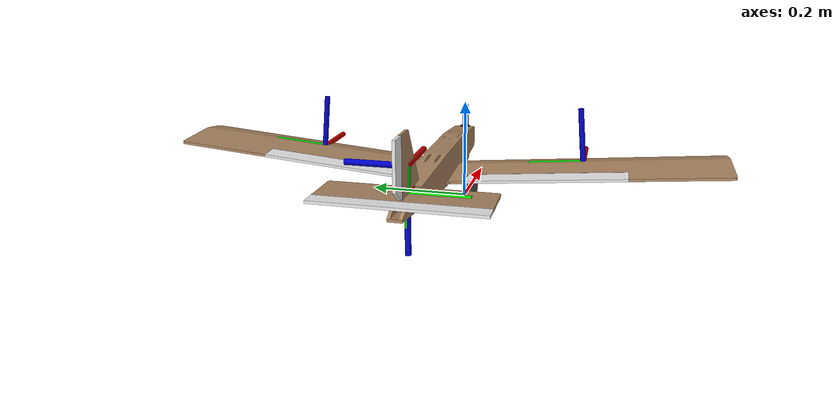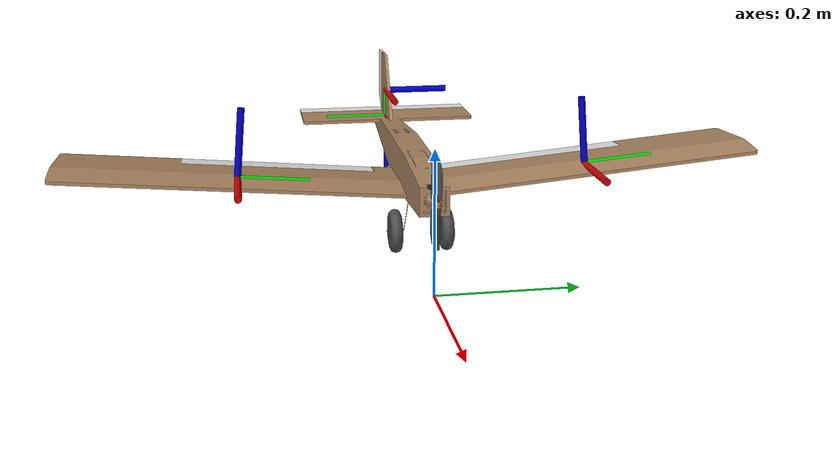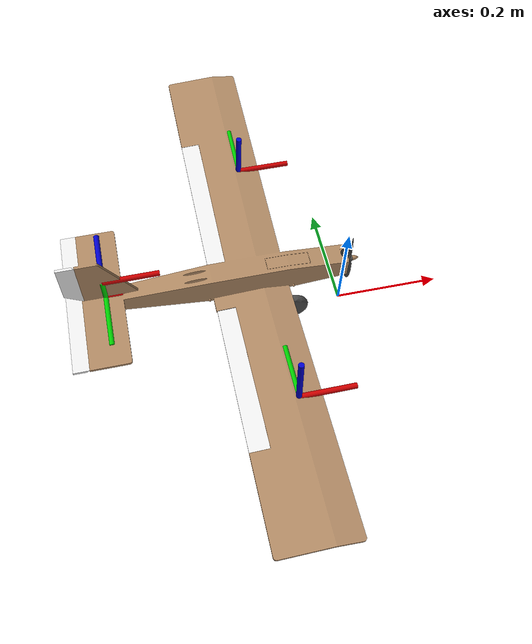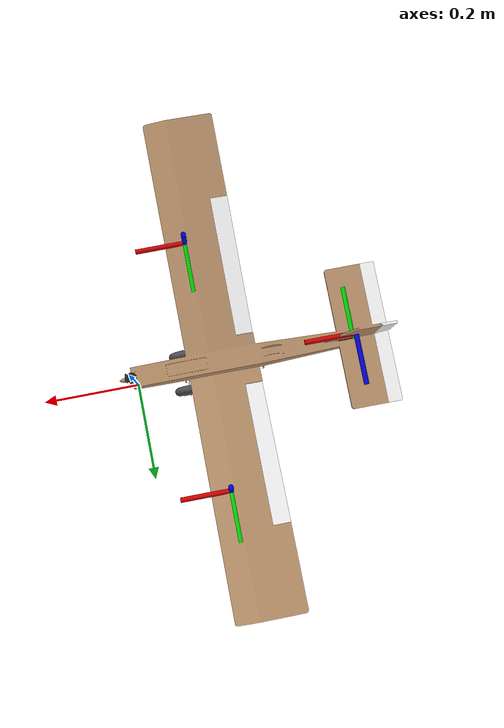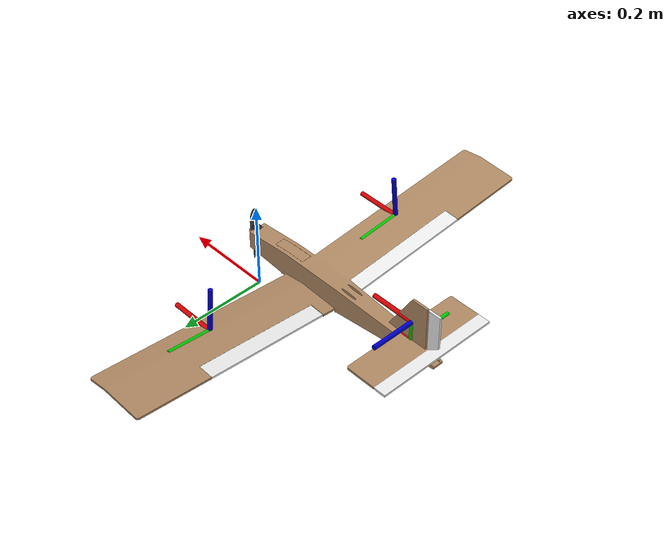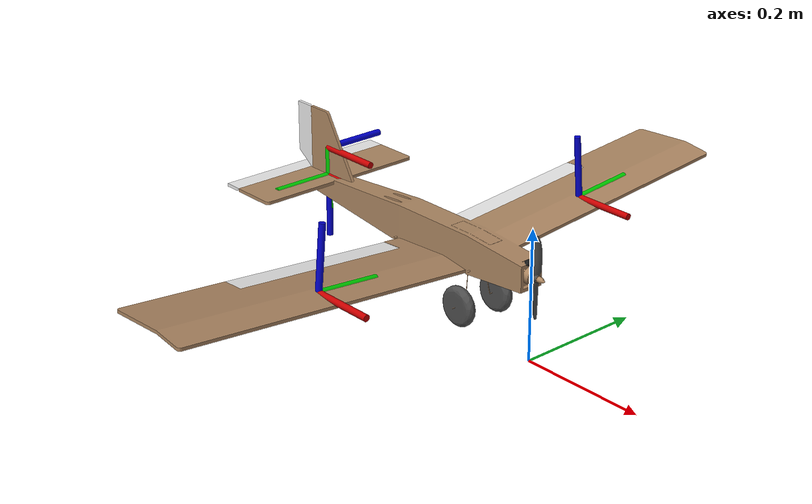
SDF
<?xml version='1.0'?>
<sdf version='1.6'>
  <model name="mini_fixedwing_10">
    <pose>0 0 0.15 0 0 0</pose>
    <link name='fuselage'>
      <inertial>
        <pose>-0.144 0 -0.02 0 0 0</pose>
        <mass>0.194</mass>
        <inertia>
          <ixx>3e-3</ixx>
          <iyy>2e-3</iyy>
          <izz>5e-3</izz>
        </inertia>
      </inertial>
      <collision name='collision'>
        <geometry>
          <mesh>
            <uri>model://mini_fixedwing_10/meshes/stl/fuselage.stl</uri>
          </mesh>
        </geometry>
        <surface>
          <friction>
            <ode>
              <mu>0.2</mu>
              <mu2>0.2</mu2>
            </ode>
          </friction>
          <contact>
            <ode>
              <max_vel>0.1</max_vel>
              <min_depth>0.001</min_depth>
            </ode>
          </contact>
        </surface>
      </collision>
      <visual name='visual'>
        <geometry>
          <mesh>
            <uri>model://mini_fixedwing_10/meshes/stl/fuselage.stl</uri>
          </mesh>
        </geometry>
        <material>
          <ambient>0.678 0.529 0.384 1</ambient>
          <diffuse>0.678 0.529 0.384 1</diffuse>
          <specular>0.678 0.529 0.384 1</specular>
        </material>
      </visual>

      <visual name='cp_vtail'>
        <pose>-0.44 0 0.04 -1.57 0 0</pose>
        <geometry>
          <mesh>
            <scale>0.1 0.1 0.1</scale>
            <uri>model://mini_fixedwing_11/meshes/axes.dae</uri> </mesh>
        </geometry>
      </visual>
      <visual name='cp_htail'>
        <pose>-0.44 0 -0.005 3.14 0 0</pose>
        <geometry>
          <mesh>
            <scale>0.1 0.1 0.1</scale>
            <uri>model://mini_fixedwing_11/meshes/axes.dae</uri> </mesh>
        </geometry>
      </visual>
      <visual name='cp_wing_left'>
        <pose>-0.15 0.25 -0.02 0.087 0 0</pose>
        <geometry>
          <mesh>
            <scale>0.1 0.1 0.1</scale>
            <uri>model://mini_fixedwing_11/meshes/axes.dae</uri> </mesh>
        </geometry>
      </visual>
      <visual name='cp_wing_right'>
        <pose>-0.15 -0.25 -0.02 -0.087 0 0</pose>
        <geometry>
          <mesh>
            <scale>0.1 0.1 0.1</scale>
            <uri>model://mini_fixedwing_11/meshes/axes.dae</uri> </mesh>
        </geometry>
      </visual>

    </link>

    <link name='wheel_left'>
      <inertial>
        <mass>0.004</mass>
        <pose>-0.105 0.035 -0.09</pose>
        <inertia>
          <ixx>2.27e-5</ixx>
          <iyy>1.16e-5</iyy>
          <izz>1.16e-5</izz>
        </inertia>
      </inertial>
      <visual name='visual'>
        <cast_shadows>0</cast_shadows>
        <geometry>
          <mesh>
            <uri>model://mini_fixedwing_10/meshes/stl/wheel_left.stl</uri>
          </mesh>
        </geometry>
        <material>
          <script>
            <name>Gazebo/DarkGrey</name>
          </script>
        </material>
      </visual>
      <collision name='collision'>
        <pose>-0.105 0.035 -0.09 1.57 0 0</pose>
        <geometry>
          <cylinder>
            <radius>0.0348</radius>
            <length>0.0162</length>
          </cylinder>
        </geometry>
        <surface>
          <friction>
            <ode>
              <mu>0.3</mu>
              <mu2>0.3</mu2>
            </ode>
          </friction>
          <contact>
            <ode>
              <max_vel>0.1</max_vel>
              <min_depth>0.001</min_depth>
            </ode>
          </contact>
        </surface>
      </collision>

    </link>

    <joint name='wheel_left_joint' type='revolute'>
      <pose>-0.105 0.035 -0.09 0 0 0</pose>
      <parent>fuselage</parent>
      <child>wheel_left</child>
      <axis>
        <xyz>0 1 0</xyz>
        <dynamics>
          <damping>0.1</damping>
        </dynamics>
      </axis>
      <physics>
        <ode>
          <implicit_spring_damper>1</implicit_spring_damper>
        </ode>
      </physics>
    </joint>

    <link name='wheel_right'>
      <inertial>
        <mass>0.004</mass>
        <pose>-0.105 -0.035 -0.09 0 0 0</pose>
        <inertia>
          <ixx>2.27e-5</ixx>
          <iyy>1.16e-5</iyy>
          <izz>1.16e-5</izz>
        </inertia>
      </inertial>
      <visual name='visual'>
        <cast_shadows>0</cast_shadows>
        <geometry>
          <mesh>
            <uri>model://mini_fixedwing_10/meshes/stl/wheel_right.stl</uri>
          </mesh>
        </geometry>
        <material>
          <script>
            <name>Gazebo/DarkGrey</name>
          </script>
        </material>
      </visual>
      <collision name='collision'>
        <pose>-0.105 -0.035 -0.09 1.57 0 0</pose>
        <geometry>
          <cylinder>
            <radius>0.0348</radius>
            <length>0.0162</length>
          </cylinder>
        </geometry>
        <surface>
          <friction>
            <ode>
              <mu>0.3</mu>
              <mu2>0.3</mu2>
            </ode>
          </friction>
          <contact>
            <ode>
              <max_vel>0.1</max_vel>
              <min_depth>0.001</min_depth>
            </ode>
          </contact>
        </surface>
      </collision>

    </link>

    <joint name='wheel_right_joint' type='revolute'>
      <pose>-0.105 -0.035 -0.09 0 0 0</pose>
      <parent>fuselage</parent>
      <child>wheel_right</child>
      <axis>
        <xyz>0 1 0</xyz>
        <dynamics>
          <damping>0.1</damping>
        </dynamics>
      </axis>
      <physics>
        <ode>
          <implicit_spring_damper>1</implicit_spring_damper>
        </ode>
      </physics>
    </joint>

    <link name='rudder'>
      <inertial>
        <mass>0.001</mass>
        <pose>-0.495 0 0.05</pose>
        <inertia>
          <ixx>2e-6</ixx>
          <iyy>3.82e-5</iyy>
          <izz>4.02e-5</izz>
        </inertia>
      </inertial>
      <visual name='visual'>
        <cast_shadows>0</cast_shadows>
        <geometry>
          <mesh>
            <uri>model://mini_fixedwing_10/meshes/stl/rudder.stl</uri>
          </mesh>
        </geometry>
        <material>
          <script>
            <name>Gazebo/White</name>
          </script>
        </material>
      </visual>
    </link>

    <joint name='rudder_joint' type='revolute'>
      <pose>-0.48 0 0.05</pose>
      <parent>fuselage</parent>
      <child>rudder</child>
      <axis>
        <xyz>0 0 1</xyz>
        <dynamics>
          <damping>0.1</damping>
        </dynamics>
        <limit>
          <lower>-0.5</lower>
          <upper>0.5</upper>
        </limit>
      </axis>
      <physics>
        <ode>
          <implicit_spring_damper>1</implicit_spring_damper>
        </ode>
      </physics>
    </joint>

    <link name='elevator'>
      <inertial>
        <mass>0.002</mass>
        <pose>-0.5 0 -0.005</pose>
        <inertia>
          <ixx>1.33e-5</ixx>
          <iyy>1.03e-3</iyy>
          <izz>1.05e-3</izz>
        </inertia>
      </inertial>
      <visual name='visual'>
        <cast_shadows>0</cast_shadows>
        <geometry>
          <mesh>
            <uri>model://mini_fixedwing_10/meshes/stl/elevator.stl</uri>
          </mesh>
        </geometry>
        <material>
          <script>
            <name>Gazebo/White</name>
          </script>
        </material>
      </visual>
    </link>

    <joint name='elevator_joint' type='revolute'>
      <pose>-0.48 0 -0.005</pose>
      <parent>fuselage</parent>
      <child>elevator</child>
      <axis>
        <xyz>0 1 0</xyz>
        <dynamics>
          <damping>0.1</damping>
        </dynamics>
        <limit>
          <lower>-0.5</lower>
          <upper>0.5</upper>
        </limit>
      </axis>
      <physics>
        <ode>
          <implicit_spring_damper>1</implicit_spring_damper>
        </ode>
      </physics>
    </joint>

    <link name='aileron_left'>
      <inertial>
        <mass>0.003</mass>
        <pose>-0.24 0.189 -0.03 0.087 0 0</pose>
        <inertia>
          <ixx>3.9e-6</ixx>
          <iyy>3.6e-6</iyy>
          <izz>1.07e-4</izz>
        </inertia>
      </inertial>
      <visual name='visual'>
        <cast_shadows>0</cast_shadows>
        <geometry>
          <mesh>
            <uri>model://mini_fixedwing_10/meshes/stl/aileron_left.stl</uri>
          </mesh>
        </geometry>
        <material>
          <script>
            <name>Gazebo/White</name>
          </script>
        </material>
      </visual>
    </link>

    <joint name='aileron_left_joint' type='revolute'>
      <pose>-0.216 0.189 -0.025 0.087 0 0</pose>
      <parent>fuselage</parent>
      <child>aileron_left</child>
      <axis>
        <xyz>0 -1 0</xyz>
        <dynamics>
          <damping>0.1</damping>
        </dynamics>
        <limit>
          <lower>-0.5</lower>
          <upper>0.5</upper>
        </limit>
      </axis>
      <physics>
        <ode>
          <implicit_spring_damper>1</implicit_spring_damper>
        </ode>
      </physics>
    </joint>

    <link name='aileron_right'>
      <inertial>
        <mass>0.003</mass>
        <pose>-0.24 -0.189 -0.03 -0.087 0 0</pose>
        <inertia>
          <ixx>3.9e-6</ixx>
          <iyy>3.6e-6</iyy>
          <izz>1.07e-4</izz>
        </inertia>
      </inertial>
      <visual name='visual'>
        <cast_shadows>0</cast_shadows>
        <geometry>
          <mesh>
            <uri>model://mini_fixedwing_10/meshes/stl/aileron_right.stl</uri>
          </mesh>
        </geometry>
        <material>
          <script>
            <name>Gazebo/White</name>
          </script>
        </material>
      </visual>
    </link>

    <joint name='aileron_right_joint' type='revolute'>
      <pose>-0.216 -0.189 -0.025 -0.087 0 0</pose>
      <parent>fuselage</parent>
      <child>aileron_right</child>
      <axis>
        <xyz>0 -1 0</xyz>
        <dynamics>
          <damping>0.1</damping>
        </dynamics>
        <limit>
          <lower>-0.5</lower>
          <upper>0.5</upper>
        </limit>
      </axis>
      <physics>
        <ode>
          <implicit_spring_damper>1</implicit_spring_damper>
        </ode>
      </physics>
    </joint>

    <link name='propeller'>
      <inertial>
        <mass>0.001</mass>
        <pose>0 0 -0.02</pose>
        <inertia>
          <ixx>1e-6</ixx>
          <iyy>1e-6</iyy>
          <izz>1e-6</izz>
        </inertia>
      </inertial>
      <visual name='visual'>
        <cast_shadows>0</cast_shadows>
        <geometry>
          <mesh>
            <uri>model://mini_fixedwing_10/meshes/stl/propeller.stl</uri>
          </mesh>
        </geometry>
        <material>
          <script>
            <name>Gazebo/DarkGrey</name>
          </script>
        </material>
      </visual>
    </link>

    <joint name='propeller_joint' type='revolute'>
      <pose>0 0 -0.02</pose>
      <parent>fuselage</parent>
      <child>propeller</child>
      <axis>
        <xyz>1 0 0</xyz>
      </axis>
    </joint>

    <include>
      <uri>model://gps</uri>
      <pose>0 0 0 0 0 0</pose>
      <name>gps</name>
    </include>
    <joint name='gps_joint' type='fixed'>
      <child>gps::link</child>
      <parent>fuselage</parent>
    </joint>

    <plugin name="vtail" filename="libLiftDragPlugin2.so">
      <pose>-0.44 0 0.04 -1.57 0 0</pose>
      <cL0>0</cL0>
      <cLa>5.61</cLa>
      <cm0>0</cm0>
      <cma>0</cma>
      <cD0>0.03</cD0>
      <kcDcL>0.1</kcDcL>
      <alpha_stall>0.34</alpha_stall>
      <cLa_stall>-12.1</cLa_stall>
      <cma_stall>-0.434</cma_stall>
      <area>0.05</area>
      <air_density>1.2041</air_density>
      <link_name>fuselage</link_name>
      <control_joint_name>rudder_joint</control_joint_name>
      <control_joint_rad_to_cL>1.0</control_joint_rad_to_cL>
      <control_joint_rad_to_cm>-0.25</control_joint_rad_to_cm>
    </plugin>

    <plugin name="htail" filename="libLiftDragPlugin2.so">
      <pose>-0.44 0 -0.005 3.14 0 0</pose>
      <cL0>0</cL0>
      <cLa>5.61</cLa>
      <cm0>0</cm0>
      <cma>0</cma>
      <cD0>0.34</cD0>
      <kcDcL>0.1</kcDcL>
      <alpha_stall>0.3</alpha_stall>
      <cLa_stall>-12.1</cLa_stall>
      <cma_stall>-0.434</cma_stall>
      <area>0.05</area>
      <air_density>1.2041</air_density>
      <link_name>fuselage</link_name>
      <control_joint_name>elevator_joint</control_joint_name>
      <control_joint_rad_to_cL>1.0</control_joint_rad_to_cL>
      <control_joint_rad_to_cm>-0.25</control_joint_rad_to_cm>
    </plugin>

    <plugin name="wing_left" filename="libLiftDragPlugin2.so">
      <pose>-0.15 0.25 -0.02 0.087 0 0</pose>
      <cL0>0.25</cL0>
      <cLa>5.289</cLa>
      <!--check cm0-->
      <cm0>0.01</cm0>
      <cma>-0.286</cma>
      <cD0>0.03</cD0>
      <kcDcL>0.1</kcDcL>
      <alpha_stall>0.18</alpha_stall>
      <cLa_stall>-5.95</cLa_stall>
      <cma_stall>-0.67</cma_stall>
      <area>0.0707</area>
      <air_density>1.2041</air_density>
      <link_name>fuselage</link_name>
      <control_joint_name>aileron_left_joint</control_joint_name>
      <control_joint_rad_to_cL>1.0</control_joint_rad_to_cL>
      <control_joint_rad_to_cm>-0.25</control_joint_rad_to_cm>
      <verbose>0</verbose>
    </plugin>

    <plugin name="wing_right" filename="libLiftDragPlugin2.so">
      <pose>-0.15 -0.25 -0.02 -0.087 0 0</pose>
      <cL0>0.25</cL0>
      <cLa>5.289</cLa>
      <!--check cm0-->
      <cm0>0.01</cm0>
      <cma>-0.286</cma>
      <cD0>0.03</cD0>
      <kcDcL>0.1</kcDcL>
      <alpha_stall>0.18</alpha_stall>
      <cLa_stall>-5.95</cLa_stall>
      <cma_stall>-0.67</cma_stall>
      <area>0.0707</area>
      <air_density>1.2041</air_density>
      <link_name>fuselage</link_name>
      <control_joint_name>aileron_right_joint</control_joint_name>
      <control_joint_rad_to_cL>1.0</control_joint_rad_to_cL>
      <control_joint_rad_to_cm>-0.25</control_joint_rad_to_cm>
      <verbose>0</verbose>
    </plugin>

    <!--Start PX4 autopilot-->

    <link name='imu_link'>
      <pose>-0.144 0 -0.02 0 0 0</pose>
      <inertial>
        <mass>0.001</mass>
        <inertia>
          <ixx>1e-05</ixx>
          <iyy>1e-05</iyy>
          <izz>1e-05</izz>
        </inertia>
      </inertial>
    </link>

    <joint name='imu_joint' type='revolute'>
      <child>imu_link</child>
      <parent>fuselage</parent>
      <axis>
        <xyz>1 0 0</xyz>
        <limit>
          <lower>0</lower>
          <upper>0</upper>
          <effort>0</effort>
          <velocity>0</velocity>
        </limit>
        <dynamics>
          <spring_reference>0</spring_reference>
          <spring_stiffness>0</spring_stiffness>
        </dynamics>
        <use_parent_model_frame>1</use_parent_model_frame>
      </axis>
    </joint>

    <link name='airspeed_link'>
      <pose>0 0 0 0 0 0</pose>
      <inertial>
        <pose>0 0 0 0 0 0</pose>
        <mass>0.015</mass>
        <inertia>
          <ixx>1e-05</ixx>
          <ixy>0</ixy>
          <ixz>0</ixz>
          <iyy>1e-05</iyy>
          <iyz>0</iyz>
          <izz>1e-05</izz>
        </inertia>
      </inertial>
    </link>
    <joint name='airspeed_joint' type='revolute'>
      <child>airspeed_link</child>
      <parent>fuselage</parent>
      <axis>
        <xyz>1 0 0</xyz>
        <limit>
          <lower>0</lower>
          <upper>0</upper>
          <effort>0</effort>
          <velocity>0</velocity>
        </limit>
        <dynamics>
          <spring_reference>0</spring_reference>
          <spring_stiffness>0</spring_stiffness>
        </dynamics>
        <use_parent_model_frame>1</use_parent_model_frame>
      </axis>
    </joint>

    <plugin name='gazebo_imu_plugin' filename='libgazebo_imu_plugin.so'>
      <robotNamespace></robotNamespace>
      <linkName>imu_link</linkName>
      <imuTopic>/imu</imuTopic>
      <gyroscopeNoiseDensity>0.0003394</gyroscopeNoiseDensity>
      <gyroscopeRandomWalk>3.8785e-05</gyroscopeRandomWalk>
      <gyroscopeBiasCorrelationTime>1000.0</gyroscopeBiasCorrelationTime>
      <gyroscopeTurnOnBiasSigma>0.0087</gyroscopeTurnOnBiasSigma>
      <accelerometerNoiseDensity>0.004</accelerometerNoiseDensity>
      <accelerometerRandomWalk>0.006</accelerometerRandomWalk>
      <accelerometerBiasCorrelationTime>300.0</accelerometerBiasCorrelationTime>
      <accelerometerTurnOnBiasSigma>0.196</accelerometerTurnOnBiasSigma>
    </plugin>

    <plugin name='groundtruth_plugin' filename='libgazebo_groundtruth_plugin.so'>
      <robotNamespace/>
    </plugin>

    <plugin name='magnetometer_plugin' filename='libgazebo_magnetometer_plugin.so'>
      <robotNamespace/>
      <pubRate>100</pubRate>
      <noiseDensity>0.0004</noiseDensity>
      <randomWalk>6.4e-06</randomWalk>
      <biasCorrelationTime>600</biasCorrelationTime>
      <magTopic>/mag</magTopic>
    </plugin>

    <plugin name='barometer_plugin' filename='libgazebo_barometer_plugin.so'>
      <robotNamespace/>
      <pubRate>50</pubRate>
      <baroTopic>/baro</baroTopic>
    </plugin>

    <plugin name='airspeed_plugin' filename='libgazebo_airspeed_plugin.so'>
      <robotNamespace/>
      <linkName>airspeed_link</linkName>
    </plugin>

    <plugin name='motor_plugin' filename='libMotorPlugin.so'>
      <gztopic>/throttle1</gztopic>
      <joint_name>propeller_joint</joint_name>
      <prop_name>propeller</prop_name>
      <diameter>5</diameter>
      <ct>0.1025  -0.0258 0.2714  -0.6997 0.359</ct>
      <cp>0.0537  0.0096  0.2053  -0.4276 0.1702</cp>
      <kV>2280</kV>
      <i0>0.5</i0>
      <iMax>30</iMax>
      <r0>0.2</r0>
      <battV>11.1</battV>
      <capacity>850</capacity>
      <axis_num>0</axis_num>
      <!--Seems to lacking thrust, being optimisticabout motor eff.-->
      <motor_eff>0.9</motor_eff>
      <verbose>1</verbose>
    </plugin>

    <plugin name='mavlink_interface' filename='libgazebo_mavlink_interface.so'>
      <robotNamespace></robotNamespace>
      <imuSubTopic>/imu</imuSubTopic>

      <magSubTopic>/mag</magSubTopic>
      <baroSubTopic>/baro</baroSubTopic>
      <mavlink_addr>INADDR_ANY</mavlink_addr>
      <mavlink_udp_port>14560</mavlink_udp_port>
      <serialEnabled>false</serialEnabled>
      <serialDevice>/dev/ttyACM0</serialDevice>
      <baudRate>921600</baudRate>
      <qgc_addr>INADDR_ANY</qgc_addr>
      <qgc_udp_port>14550</qgc_udp_port>
      <sdk_addr>INADDR_ANY</sdk_addr>
      <sdk_udp_port>14540</sdk_udp_port>
      <hil_mode>false</hil_mode>
      <hil_state_level>false</hil_state_level>
      <enable_lockstep>true</enable_lockstep>
      <use_tcp>true</use_tcp>
      <motorSpeedCommandPubTopic>/gazebo/command/motor_speed</motorSpeedCommandPubTopic>
      <control_channels>
        <channel name="rudder">
          <input_index>2</input_index>
          <input_offset>0</input_offset>
          <input_scaling>0.28</input_scaling>
          <zero_position_disarmed>0</zero_position_disarmed>
          <zero_position_armed>0</zero_position_armed>
          <joint_control_type>position</joint_control_type>
          <joint_name>rudder_joint</joint_name>
          <joint_control_pid>
            <p>10</p>
            <i>0</i>
            <d>0</d>
            <iMax>0</iMax>
            <iMin>0</iMin>
            <cmdMax>0.28</cmdMax>
            <cmdMin>-0.28</cmdMin>
          </joint_control_pid>
        </channel>
        <channel name="puller">
          <input_index>4</input_index>
          <!--Needs a lot of throttle-->
          <input_offset>0.3</input_offset>
          <input_scaling>1</input_scaling>
          <zero_position_disarmed>0</zero_position_disarmed>
          <zero_position_armed>0</zero_position_armed>
          <joint_control_type>position_gztopic</joint_control_type>
          <gztopic>/throttle1</gztopic>
          <joint_name>propeller_joint</joint_name>
        </channel>
        <channel name="aileron_left">
          <input_index>5</input_index>
          <input_offset>0</input_offset>
          <input_scaling>-0.28</input_scaling>
          <zero_position_disarmed>0</zero_position_disarmed>
          <zero_position_armed>0</zero_position_armed>
          <joint_control_type>position</joint_control_type>
          <joint_name>aileron_left_joint</joint_name>
          <joint_control_pid>
            <p>10</p>
            <i>0</i>
            <d>0</d>
            <iMax>0</iMax>
            <iMin>0</iMin>
            <cmdMax>0.28</cmdMax>
            <cmdMin>-0.28</cmdMin>
          </joint_control_pid>
        </channel>
        <channel name="aileron_right">
          <input_index>6</input_index>
          <input_offset>0</input_offset>
          <input_scaling>-0.28</input_scaling>
          <zero_position_disarmed>0</zero_position_disarmed>
          <zero_position_armed>0</zero_position_armed>
          <joint_control_type>position</joint_control_type>
          <joint_name>aileron_right_joint</joint_name>
          <joint_control_pid>
            <p>10</p>
            <i>0</i>
            <d>0</d>
            <iMax>0</iMax>
            <iMin>0</iMin>
            <cmdMax>0.28</cmdMax>
            <cmdMin>-0.28</cmdMin>
          </joint_control_pid>
        </channel>
        <channel name="elevator">
          <input_index>7</input_index>
          <input_offset>0</input_offset>
          <input_scaling>0.28</input_scaling>
          <zero_position_disarmed>0</zero_position_disarmed>
          <zero_position_armed>0</zero_position_armed>
          <joint_control_type>position</joint_control_type>
          <joint_name>elevator_joint</joint_name>
          <joint_control_pid>
            <p>10</p>
            <i>0</i>
            <d>0</d>
            <iMax>0</iMax>
            <iMin>0</iMin>
            <cmdMax>0.28</cmdMax>
            <cmdMin>-0.28</cmdMin>
          </joint_control_pid>
        </channel>
      </control_channels>

    </plugin>
  </model>

</sdf>

<!-- vim: set et fenc=utf-8 ft=xml ff=unix sts=0 sw=2 ts=2 : -->

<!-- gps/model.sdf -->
<sdf version="1.6">
  <model name="gps">
    <link name="link">
      <pose>0 0 0 0 0 0</pose>
      <inertial>
        <pose>0 0 0 0 0 0</pose>
        <mass>0.015</mass>
        <inertia>
          <ixx>1e-05</ixx>
          <ixy>0</ixy>
          <ixz>0</ixz>
          <iyy>1e-05</iyy>
          <iyz>0</iyz>
          <izz>1e-05</izz>
        </inertia>
      </inertial>
      <visual name="visual">
        <geometry>
          <cylinder>
            <radius>0.01</radius>
            <length>0.002</length>
          </cylinder>
        </geometry>
        <material>
          <script>
            <name>Gazebo/Black</name>
            <uri>file://usr/share/gz/gz-sim8/media/gazebo.material</uri>
          </script>
        </material>
      </visual>
      <sensor name="gps" type="gps">
        <pose>0 0 0 0 0 0</pose>
        <update_rate>5.0</update_rate>
        <always_on>true</always_on>
        <visualize>false</visualize>
        <!-- GpsSensor noise currently not used -->
        <plugin name="gps_plugin" filename="libgazebo_gps_plugin.so">
          <robotNamespace></robotNamespace>
          <gpsNoise>true</gpsNoise>
          <gpsXYRandomWalk>2.0</gpsXYRandomWalk>
          <gpsZRandomWalk>4.0</gpsZRandomWalk>
          <gpsXYNoiseDensity>2.0e-4</gpsXYNoiseDensity>
          <gpsZNoiseDensity>4.0e-4</gpsZNoiseDensity>
          <gpsVXYNoiseDensity>0.2</gpsVXYNoiseDensity>
          <gpsVZNoiseDensity>0.4</gpsVZNoiseDensity>
        </plugin>
      </sensor>
    </link>
  </model>
</sdf>
